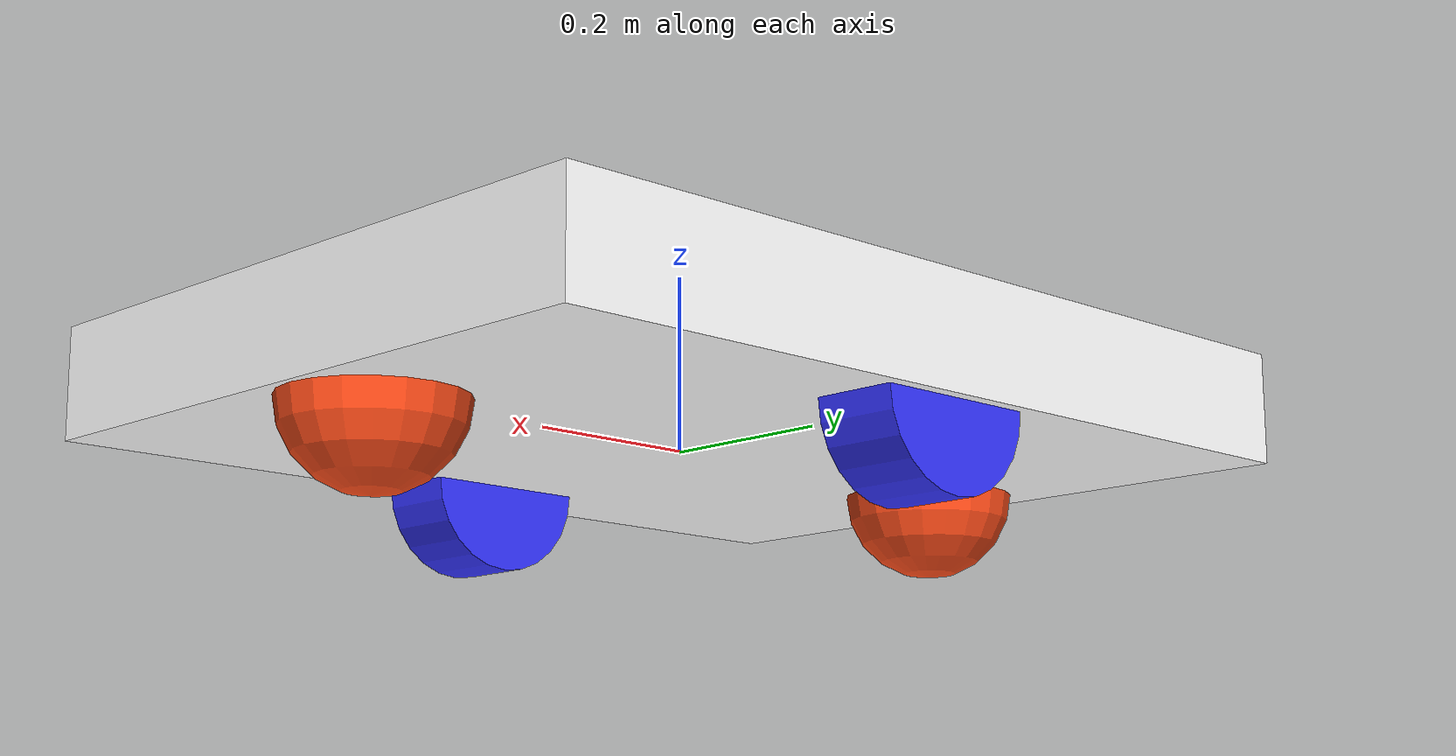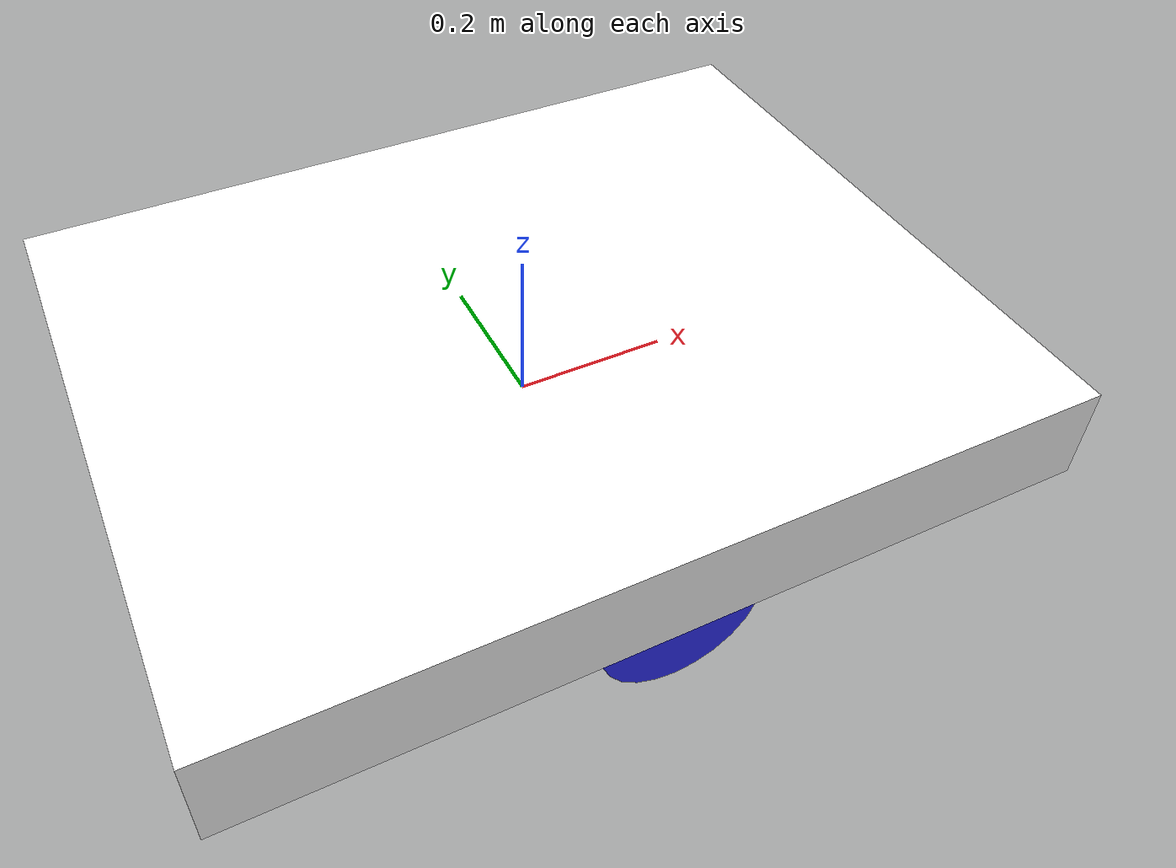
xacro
<?xml version="1.0"?>
<robot xmlns:xacro="http://www.ros.org/wiki/xacro"  name="robot">

    <xacro:include filename="hosbot_core.xacro"/>

    <xacro:include filename="gazebo_control.xacro"/>

</robot>

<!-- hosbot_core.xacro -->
<robot xmlns:xacro="http://www.ros.org/wiki/xacro" >

    <xacro:include filename="inertial_macros.xacro"/>

    <xacro:property name="chassis_length" value="1.055"/>
    <xacro:property name="chassis_width" value="0.825"/>
    <xacro:property name="chassis_height" value="0.127"/>
    <xacro:property name="chassis_mass" value="1.0"/>
    <xacro:property name="wheel_radius" value="0.1"/>
    <xacro:property name="wheel_thickness" value="0.095"/>
    <xacro:property name="wheel_mass" value="8.5"/>
    <xacro:property name="wheel_offset_x" value="0"/>
    <xacro:property name="wheel_offset_y" value="0.350"/>
    <xacro:property name="wheel_offset_z" value="0"/>
    <xacro:property name="caster_wheel_radius" value="0.1"/>
    <xacro:property name="caster_wheel_mass" value="2.0"/>
    <xacro:property name="caster_wheel_offset_x" value="0.42"/>
    <xacro:property name="caster_wheel_offset_z" value="${wheel_offset_z - wheel_radius + caster_wheel_radius - (chassis_height/2)}"/>

    <material name="white">
        <color rgba="1 1 1 1" />
    </material>

    <material name="orange">
        <color rgba="1 0.3 0.1 1"/>
    </material>

    <material name="blue">
        <color rgba="0.2 0.2 1 1"/>
    </material>

    <material name="black">
        <color rgba="0 0 0 1"/>
    </material>

    <!-- BASE LINK -->
    <link name="base_link">
    </link>

    <!-- CHASSIS LINK -->

    <joint name="chassis_joint" type="fixed">
        <parent link="base_link"/>
        <child link="chassis"/>
        <origin xyz="0 0 ${chassis_height/2}"/>
    </joint>

    <link name="chassis">
        <visual>
            <origin xyz="0 0 0"/>
            <geometry>
                <box size="${chassis_length} ${chassis_width} ${chassis_height}"/>
            </geometry>
            <material name="white"/>
        </visual>
        <collision>
            <origin xyz="0 0 0"/>
            <geometry>
                <box size="${chassis_length} ${chassis_width} ${chassis_height}"/>
            </geometry>
        </collision>
        <xacro:inertial_box mass="${chassis_mass}" x="${chassis_length}" y="${chassis_width}" z="${chassis_height}">
            <origin xyz="0 0 0" rpy="0 0 0"/>
        </xacro:inertial_box>
    </link>

    <gazebo reference="chassis">
        <material>Gazebo/White</material>
    </gazebo>

    <!-- LEFT WHEEL LINK -->
    <joint name="left_wheel_joint" type="continuous">
        <parent link="base_link"/>
        <child link="left_wheel"/>
        <origin xyz="0 ${wheel_offset_y} ${wheel_offset_z}" rpy="-${pi/2} 0 0" />
        <axis xyz="0 0 1"/>
    </joint>

    <link name="left_wheel">
        <visual>
            <geometry>
                <cylinder radius="${wheel_radius}" length="${wheel_thickness}"/>
            </geometry>
            <material name="blue"/>
        </visual>
        <collision>
            <geometry>
                <sphere radius="${wheel_radius}"/>
            </geometry>
        </collision>
        <xacro:inertial_cylinder mass="${wheel_mass}" length="${wheel_thickness}" radius="${wheel_radius}">
            <origin xyz="0 0 0" rpy="0 0 0"/>
        </xacro:inertial_cylinder>
    </link>

    <gazebo reference="left_wheel">
        <material>Gazebo/Orange</material>
    </gazebo>

    <!-- RIGHT WHEEL LINK -->
    <joint name="right_wheel_joint" type="continuous">
        <parent link="base_link"/>
        <child link="right_wheel"/>
        <origin xyz="0 ${-wheel_offset_y} ${wheel_offset_z}" rpy="${pi/2} 0 0" />
        <axis xyz="0 0 -1"/>
    </joint>

    <link name="right_wheel">
        <visual>
            <geometry>
                <cylinder radius="${wheel_radius}" length="${wheel_thickness}"/>
            </geometry>
            <material name="blue"/>
        </visual>
        <collision>
            <geometry>
                <sphere radius="${wheel_radius}"/>
            </geometry>
        </collision>
        <xacro:inertial_cylinder mass="${wheel_mass}" length="${wheel_thickness}" radius="${wheel_radius}">
            <origin xyz="0 0 0" rpy="0 0 0"/>
        </xacro:inertial_cylinder>
    </link>

    <gazebo reference="right_wheel">
        <material>Gazebo/Orange</material>
    </gazebo>

    <!-- CASTER WHEEL LINK -->

    <joint name="front_caster_wheel_joint" type="fixed">
        <parent link="chassis"/>
        <child link="front_caster_wheel"/>
        <origin xyz="${caster_wheel_offset_x} 0 ${caster_wheel_offset_z}"/>
    </joint>
    <joint name="rear_caster_wheel_joint" type="fixed">
        <parent link="chassis"/>
        <child link="rear_caster_wheel"/>
        <origin xyz="${-caster_wheel_offset_x} 0 ${caster_wheel_offset_z}"/>
    </joint>

    <link name="front_caster_wheel">
        <visual>
            <geometry>
                <sphere radius="${caster_wheel_radius}"/>
            </geometry>
            <material name="orange"/>
        </visual>
        <collision>
            <geometry>
                <sphere radius="${caster_wheel_radius}"/>
            </geometry>
        </collision>
        <xacro:inertial_sphere mass="${caster_wheel_mass}" radius="${caster_wheel_radius}">
            <origin xyz="0 0 0" rpy="0 0 0"/>
        </xacro:inertial_sphere>
    </link>
    <link name="rear_caster_wheel">
        <visual>
            <geometry>
                <sphere radius="${caster_wheel_radius}"/>
            </geometry>
            <material name="orange"/>
        </visual>
        <collision>
            <geometry>
                <sphere radius="${caster_wheel_radius}"/>
            </geometry>
        </collision>
        <xacro:inertial_sphere mass="${caster_wheel_mass}" radius="${caster_wheel_radius}">
            <origin xyz="0 0 0" rpy="0 0 0"/>
        </xacro:inertial_sphere>
    </link>

    <gazebo reference="front_caster_wheel">
        <material>Gazebo/Black</material>
    </gazebo>
    <gazebo reference="rear_caster_wheel">
        <material>Gazebo/Black</material>
    </gazebo>

    <link   name =  "base_footprint"/>
    <joint name = "base_joint"  type = "fixed">
        <parent link="base_footprint"/>
        <child link="base_link"/>
        <origin xyz="0.0 0.0 0.0" rpy="0 0 0" />
    </joint>

</robot>
